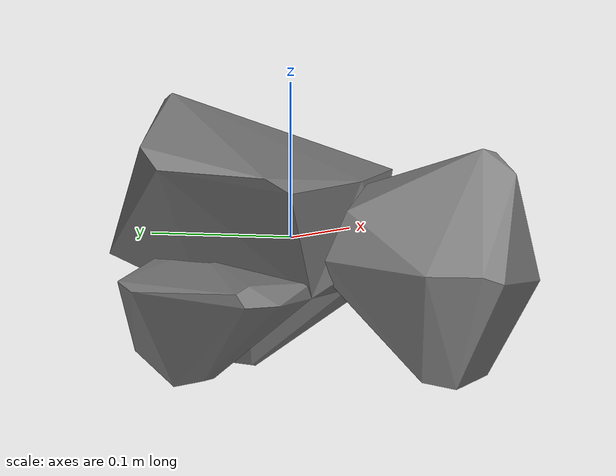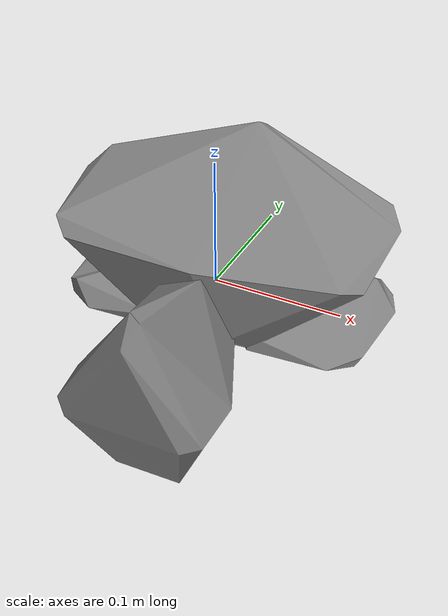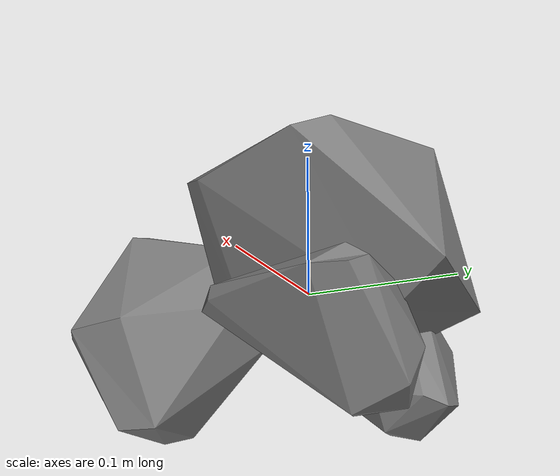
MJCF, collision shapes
<mujoco model="a_toy_airplane">
  <compiler angle="radian" />

  <asset>
    <mesh name="a_toy_airplane_visual_mesh" file="a_toy_airplane/textured.obj" />
    <mesh name="a_toy_airplane_collision_mesh_0" file="a_toy_airplane/textured_coacd_0.stl" />
    <mesh name="a_toy_airplane_collision_mesh_1" file="a_toy_airplane/textured_coacd_1.stl" />
    <mesh name="a_toy_airplane_collision_mesh_2" file="a_toy_airplane/textured_coacd_2.stl" />
    <mesh name="a_toy_airplane_collision_mesh_3" file="a_toy_airplane/textured_coacd_3.stl" />
    <texture name="a_toy_airplane_texture" type="2d" file="a_toy_airplane/texture_map.png" />
    <material name="a_toy_airplane_material" texture="a_toy_airplane_texture" />
  </asset>

  <worldbody>
    <body name="a_toy_airplane" pos="0 0 0" euler="0 0 0">
      <freejoint name="a_toy_airplane_joint" />
      <geom name="a_toy_airplane_visual_geom" type="mesh" mesh="a_toy_airplane_visual_mesh" material="a_toy_airplane_material" pos="-0.03572475763431454 -0.030807398220545207 -0.09092314374993266" euler="0 0 0" contype="0" conaffinity="0" group="0" />
      <geom name="a_toy_airplane_collision_geom_0" type="mesh" mesh="a_toy_airplane_collision_mesh_0" pos="-0.03572475763431454 -0.030807398220545207 -0.09092314374993266" euler="0 0 0" contype="1" conaffinity="1" group="3" />
      <geom name="a_toy_airplane_collision_geom_1" type="mesh" mesh="a_toy_airplane_collision_mesh_1" pos="-0.03572475763431454 -0.030807398220545207 -0.09092314374993266" euler="0 0 0" contype="1" conaffinity="1" group="3" />
      <geom name="a_toy_airplane_collision_geom_2" type="mesh" mesh="a_toy_airplane_collision_mesh_2" pos="-0.03572475763431454 -0.030807398220545207 -0.09092314374993266" euler="0 0 0" contype="1" conaffinity="1" group="3" />
      <geom name="a_toy_airplane_collision_geom_3" type="mesh" mesh="a_toy_airplane_collision_mesh_3" pos="-0.03572475763431454 -0.030807398220545207 -0.09092314374993266" euler="0 0 0" contype="1" conaffinity="1" group="3" />
      <inertial pos="0 0 0" euler="0 0 0" mass="0.114" diaginertia="0.001 0.001 0.001" />
    </body>
  </worldbody>
</mujoco>
